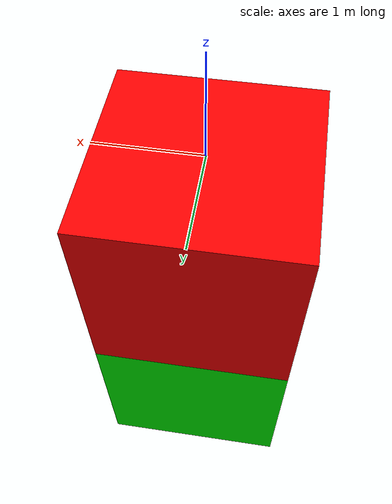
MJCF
<mujoco model="MuJoCo Model">
    <compiler angle="radian" autolimits="true"/>
    <default/>

    <asset>
        <texture type="skybox" builtin="gradient" rgb1=".3 .5 .7" rgb2="0 0 0" width="32" height="512"/>
        <texture name="body" type="cube" builtin="flat" mark="cross" width="127" height="1278" rgb1="0.8 0.6 0.4"
                 rgb2="0.8 0.6 0.4" markrgb="1 1 1" random="0.01"/>
        <material name="body" texture="body" texuniform="true" rgba="0.8 0.6 .4 1"/>
        <texture name="grid" type="2d" builtin="checker" width="512" height="512" rgb1=".1 .2 .3" rgb2=".2 .3 .4"/>
        <material name="grid" texture="grid" texrepeat="1 1" texuniform="true" reflectance=".2"/>
    </asset>

    <worldbody>
        <camera name="fixed" pos="0 -30 30" quat="0.707107 0.707107 0 0"/>
        <light name="top" pos="0 0 1" dir="0 0 -1"/>

        <body name="double_pendulum" pos="0 0 0" gravcomp="0">
            <inertial pos="0 0 -1" mass="1" diaginertia="1 1 1"/>
            <joint name="joint_0" pos="0 0 0" axis="1 0 0"/>
            <geom name="link_0" size="1 1 1" pos="0 0 -1" type="box" rgba="1 0 0 1"/>
            <body name="link_1" pos="0 0 -2" gravcomp="0">
                <inertial pos="0 0 -1" mass="1" diaginertia="1 1 1"/>
                <joint name="joint_1" pos="0 0 0" axis="1 0 0"/>
                <geom name="link_1_geom" size="1 1 1" pos="0 0 -1" type="box" rgba="0 1 0 1"/>
            </body>
        </body>
    </worldbody>
</mujoco>
